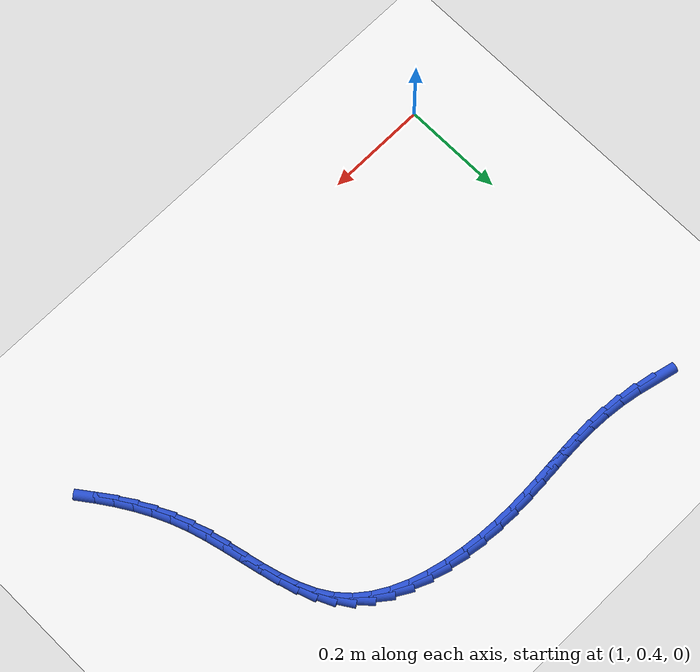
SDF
<sdf version="1.6">
 <world name="default">
  <model name="ground_plane">
   <static>1</static>
   <link name="link">
    <collision name="collision">
     <geometry><plane><normal>0 0 1</normal><size>100 100</size></plane></geometry>
     <surface><friction><ode><mu>100</mu><mu2>50</mu2></ode></friction></surface>
    </collision>
    <visual name="visual">
     <cast_shadows>0</cast_shadows>
     <geometry><plane><normal>0 0 1</normal><size>100 100</size></plane></geometry>
     <material>
      <script><uri>file://media/materials/scripts/gazebo.material</uri><name>Gazebo/WhiteGlow</name></script>
     </material>
    </visual>
   </link>
  </model>
  <model name="line">
   <link name="link_50">
    <pose>1.062405803632912 1.0656660530978226 0.01 0 1.57 -0.23312236808661627</pose>
    <collision name="collision">
     <geometry><cylinder><radius>0.01</radius><length>0.08</length></cylinder></geometry>
    </collision>
    <visual name="visual">
     <material>
      <script><name>Gazebo/Blue</name><uri>file://media/materials/scripts/gazebo.material</uri></script>
     </material>
     <geometry><cylinder><radius>0.01</radius><length>0.08</length></cylinder></geometry>
    </visual>
   </link>
   <link name="link_51">
    <pose>1.1007680325681322 1.0565573512115496 0.01 0 1.57 -0.1752799219053801</pose>
    <collision name="collision">
     <geometry><cylinder><radius>0.01</radius><length>0.08</length></cylinder></geometry>
    </collision>
    <visual name="visual">
     <material>
      <script><name>Gazebo/Blue</name><uri>file://media/materials/scripts/gazebo.material</uri></script>
     </material>
     <geometry><cylinder><radius>0.01</radius><length>0.08</length></cylinder></geometry>
    </visual>
   </link>
   <link name="link_52">
    <pose>1.1380181311865412 1.0499604591706917 0.01 0 1.57 -0.10566344640412224</pose>
    <collision name="collision">
     <geometry><cylinder><radius>0.01</radius><length>0.08</length></cylinder></geometry>
    </collision>
    <visual name="visual">
     <material>
      <script><name>Gazebo/Blue</name><uri>file://media/materials/scripts/gazebo.material</uri></script>
     </material>
     <geometry><cylinder><radius>0.01</radius><length>0.08</length></cylinder></geometry>
    </visual>
   </link>
   <link name="link_53">
    <pose>1.174014799291494 1.0461427084780193 0.01 0 1.57 -0.04329514868922163</pose>
    <collision name="collision">
     <geometry><cylinder><radius>0.01</radius><length>0.08</length></cylinder></geometry>
    </collision>
    <visual name="visual">
     <material>
      <script><name>Gazebo/Blue</name><uri>file://media/materials/scripts/gazebo.material</uri></script>
     </material>
     <geometry><cylinder><radius>0.01</radius><length>0.08</length></cylinder></geometry>
    </visual>
   </link>
   <link name="link_54">
    <pose>1.2090349079151483 1.0446255595995952 0.01 0 1.57 0.007167260759064347</pose>
    <collision name="collision">
     <geometry><cylinder><radius>0.01</radius><length>0.08</length></cylinder></geometry>
    </collision>
    <visual name="visual">
     <material>
      <script><name>Gazebo/Blue</name><uri>file://media/materials/scripts/gazebo.material</uri></script>
     </material>
     <geometry><cylinder><radius>0.01</radius><length>0.08</length></cylinder></geometry>
    </visual>
   </link>
   <link name="link_55">
    <pose>1.2433882325027603 1.0448717830510055 0.01 0 1.57 0.04328253535785284</pose>
    <collision name="collision">
     <geometry><cylinder><radius>0.01</radius><length>0.08</length></cylinder></geometry>
    </collision>
    <visual name="visual">
     <material>
      <script><name>Gazebo/Blue</name><uri>file://media/materials/scripts/gazebo.material</uri></script>
     </material>
     <geometry><cylinder><radius>0.01</radius><length>0.08</length></cylinder></geometry>
    </visual>
   </link>
   <link name="link_56">
    <pose>1.2773845484995852 1.0463441493478358 0.01 0 1.57 0.06357658999469958</pose>
    <collision name="collision">
     <geometry><cylinder><radius>0.01</radius><length>0.08</length></cylinder></geometry>
    </collision>
    <visual name="visual">
     <material>
      <script><name>Gazebo/Blue</name><uri>file://media/materials/scripts/gazebo.material</uri></script>
     </material>
     <geometry><cylinder><radius>0.01</radius><length>0.08</length></cylinder></geometry>
    </visual>
   </link>
   <link name="link_57">
    <pose>1.3113336313508788 1.0485054290056723 0.01 0 1.57 0.06750480699866826</pose>
    <collision name="collision">
     <geometry><cylinder><radius>0.01</radius><length>0.08</length></cylinder></geometry>
    </collision>
    <visual name="visual">
     <material>
      <script><name>Gazebo/Blue</name><uri>file://media/materials/scripts/gazebo.material</uri></script>
     </material>
     <geometry><cylinder><radius>0.01</radius><length>0.08</length></cylinder></geometry>
    </visual>
   </link>
   <link name="link_58">
    <pose>1.3455452565018966 1.0508183925401013 0.01 0 1.57 0.05535453281046241</pose>
    <collision name="collision">
     <geometry><cylinder><radius>0.01</radius><length>0.08</length></cylinder></geometry>
    </collision>
    <visual name="visual">
     <material>
      <script><name>Gazebo/Blue</name><uri>file://media/materials/scripts/gazebo.material</uri></script>
     </material>
     <geometry><cylinder><radius>0.01</radius><length>0.08</length></cylinder></geometry>
    </visual>
   </link>
   <link name="link_59">
    <pose>1.3803291993978948 1.0527458104667082 0.01 0 1.57 0.028160607774629663</pose>
    <collision name="collision">
     <geometry><cylinder><radius>0.01</radius><length>0.08</length></cylinder></geometry>
    </collision>
    <visual name="visual">
     <material>
      <script><name>Gazebo/Blue</name><uri>file://media/materials/scripts/gazebo.material</uri></script>
     </material>
     <geometry><cylinder><radius>0.01</radius><length>0.08</length></cylinder></geometry>
    </visual>
   </link>
   <link name="link_60">
    <pose>1.4159952354841294 1.0537504533010795 0.01 0 1.57 -0.011588158921155601</pose>
    <collision name="collision">
     <geometry><cylinder><radius>0.01</radius><length>0.08</length></cylinder></geometry>
    </collision>
    <visual name="visual">
     <material>
      <script><name>Gazebo/Blue</name><uri>file://media/materials/scripts/gazebo.material</uri></script>
     </material>
     <geometry><cylinder><radius>0.01</radius><length>0.08</length></cylinder></geometry>
    </visual>
   </link>
   <link name="link_61">
    <pose>1.452768156756894 1.0533243037699809 0.01 0 1.57 -0.05762361508047386</pose>
    <collision name="collision">
     <geometry><cylinder><radius>0.01</radius><length>0.08</length></cylinder></geometry>
    </collision>
    <visual name="visual">
     <material>
      <script><name>Gazebo/Blue</name><uri>file://media/materials/scripts/gazebo.material</uri></script>
     </material>
     <geometry><cylinder><radius>0.01</radius><length>0.08</length></cylinder></geometry>
    </visual>
   </link>
   <link name="link_62">
    <pose>1.4902896422493075 1.051159783853118 0.01 0 1.57 -0.1091128675000452</pose>
    <collision name="collision">
     <geometry><cylinder><radius>0.01</radius><length>0.08</length></cylinder></geometry>
    </collision>
    <visual name="visual">
     <material>
      <script><name>Gazebo/Blue</name><uri>file://media/materials/scripts/gazebo.material</uri></script>
     </material>
     <geometry><cylinder><radius>0.01</radius><length>0.08</length></cylinder></geometry>
    </visual>
   </link>
   <link name="link_63">
    <pose>1.5279566323581455 1.0470334419903047 0.01 0 1.57 -0.168020931062326</pose>
    <collision name="collision">
     <geometry><cylinder><radius>0.01</radius><length>0.08</length></cylinder></geometry>
    </collision>
    <visual name="visual">
     <material>
      <script><name>Gazebo/Blue</name><uri>file://media/materials/scripts/gazebo.material</uri></script>
     </material>
     <geometry><cylinder><radius>0.01</radius><length>0.08</length></cylinder></geometry>
    </visual>
   </link>
   <link name="link_64">
    <pose>1.56516522751896 1.0407221153496284 0.01 0 1.57 -0.23670510793564642</pose>
    <collision name="collision">
     <geometry><cylinder><radius>0.01</radius><length>0.08</length></cylinder></geometry>
    </collision>
    <visual name="visual">
     <material>
      <script><name>Gazebo/Blue</name><uri>file://media/materials/scripts/gazebo.material</uri></script>
     </material>
     <geometry><cylinder><radius>0.01</radius><length>0.08</length></cylinder></geometry>
    </visual>
   </link>
   <link name="link_65">
    <pose>1.601311528167304 1.0320026410991774 0.01 0 1.57 -0.3180242158675875</pose>
    <collision name="collision">
     <geometry><cylinder><radius>0.01</radius><length>0.08</length></cylinder></geometry>
    </collision>
    <visual name="visual">
     <material>
      <script><name>Gazebo/Blue</name><uri>file://media/materials/scripts/gazebo.material</uri></script>
     </material>
     <geometry><cylinder><radius>0.01</radius><length>0.08</length></cylinder></geometry>
    </visual>
   </link>
   <link name="link_66">
    <pose>1.6357916347387291 1.0206518564070393 0.01 0 1.57 -0.41536106048401433</pose>
    <collision name="collision">
     <geometry><cylinder><radius>0.01</radius><length>0.08</length></cylinder></geometry>
    </collision>
    <visual name="visual">
     <material>
      <script><name>Gazebo/Blue</name><uri>file://media/materials/scripts/gazebo.material</uri></script>
     </material>
     <geometry><cylinder><radius>0.01</radius><length>0.08</length></cylinder></geometry>
    </visual>
   </link>
   <link name="link_67">
    <pose>1.6680016476687893 1.0064465984413022 0.01 0 1.57 -0.5323926812634643</pose>
    <collision name="collision">
     <geometry><cylinder><radius>0.01</radius><length>0.08</length></cylinder></geometry>
    </collision>
    <visual name="visual">
     <material>
      <script><name>Gazebo/Blue</name><uri>file://media/materials/scripts/gazebo.material</uri></script>
     </material>
     <geometry><cylinder><radius>0.01</radius><length>0.08</length></cylinder></geometry>
    </visual>
   </link>
   <link name="link_68">
    <pose>1.6973376673930352 0.9891637043700539 0.01 0 1.57 -0.6723119249832672</pose>
    <collision name="collision">
     <geometry><cylinder><radius>0.01</radius><length>0.08</length></cylinder></geometry>
    </collision>
    <visual name="visual">
     <material>
      <script><name>Gazebo/Blue</name><uri>file://media/materials/scripts/gazebo.material</uri></script>
     </material>
     <geometry><cylinder><radius>0.01</radius><length>0.08</length></cylinder></geometry>
    </visual>
   </link>
   <link name="link_69">
    <pose>1.7231957943470202 0.9685800113613825 0.01 0 1.57 -0.8360339346330957</pose>
    <collision name="collision">
     <geometry><cylinder><radius>0.01</radius><length>0.08</length></cylinder></geometry>
    </collision>
    <visual name="visual">
     <material>
      <script><name>Gazebo/Blue</name><uri>file://media/materials/scripts/gazebo.material</uri></script>
     </material>
     <geometry><cylinder><radius>0.01</radius><length>0.08</length></cylinder></geometry>
    </visual>
   </link>
   <link name="link_70">
    <pose>1.7449757973966125 0.9444745759520853 0.01 0 1.57 -1.0040285504825182</pose>
    <collision name="collision">
     <geometry><cylinder><radius>0.01</radius><length>0.08</length></cylinder></geometry>
    </collision>
    <visual name="visual">
     <material>
      <script><name>Gazebo/Blue</name><uri>file://media/materials/scripts/gazebo.material</uri></script>
     </material>
     <geometry><cylinder><radius>0.01</radius><length>0.08</length></cylinder></geometry>
    </visual>
   </link>
   <link name="link_71">
    <pose>1.762526095322999 0.9168978840091779 0.01 0 1.57 -1.138918047160862</pose>
    <collision name="collision">
     <geometry><cylinder><radius>0.01</radius><length>0.08</length></cylinder></geometry>
    </collision>
    <visual name="visual">
     <material>
      <script><name>Gazebo/Blue</name><uri>file://media/materials/scripts/gazebo.material</uri></script>
     </material>
     <geometry><cylinder><radius>0.01</radius><length>0.08</length></cylinder></geometry>
    </visual>
   </link>
   <link name="link_72">
    <pose>1.7765690291069722 0.886429136794912 0.01 0 1.57 -1.2366706399649796</pose>
    <collision name="collision">
     <geometry><cylinder><radius>0.01</radius><length>0.08</length></cylinder></geometry>
    </collision>
    <visual name="visual">
     <material>
      <script><name>Gazebo/Blue</name><uri>file://media/materials/scripts/gazebo.material</uri></script>
     </material>
     <geometry><cylinder><radius>0.01</radius><length>0.08</length></cylinder></geometry>
    </visual>
   </link>
   <link name="link_73">
    <pose>1.7879277084468503 0.8537084997767511 0.01 0 1.57 -1.3009106567137878</pose>
    <collision name="collision">
     <geometry><cylinder><radius>0.01</radius><length>0.08</length></cylinder></geometry>
    </collision>
    <visual name="visual">
     <material>
      <script><name>Gazebo/Blue</name><uri>file://media/materials/scripts/gazebo.material</uri></script>
     </material>
     <geometry><cylinder><radius>0.01</radius><length>0.08</length></cylinder></geometry>
    </visual>
   </link>
   <link name="link_74">
    <pose>1.797425243040953 0.8193761384221585 0.01 0 1.57 -1.3356113727087884</pose>
    <collision name="collision">
     <geometry><cylinder><radius>0.01</radius><length>0.08</length></cylinder></geometry>
    </collision>
    <visual name="visual">
     <material>
      <script><name>Gazebo/Blue</name><uri>file://media/materials/scripts/gazebo.material</uri></script>
     </material>
     <geometry><cylinder><radius>0.01</radius><length>0.08</length></cylinder></geometry>
    </visual>
   </link>
   <link name="link_75">
    <pose>1.8058847425875983 0.7840722181985972 0.01 0 1.57 -1.3434369711599339</pose>
    <collision name="collision">
     <geometry><cylinder><radius>0.01</radius><length>0.08</length></cylinder></geometry>
    </collision>
    <visual name="visual">
     <material>
      <script><name>Gazebo/Blue</name><uri>file://media/materials/scripts/gazebo.material</uri></script>
     </material>
     <geometry><cylinder><radius>0.01</radius><length>0.08</length></cylinder></geometry>
    </visual>
   </link>
   <link name="link_76">
    <pose>1.8141293167851058 0.7484369045735306 0.01 0 1.57 -1.325254975710259</pose>
    <collision name="collision">
     <geometry><cylinder><radius>0.01</radius><length>0.08</length></cylinder></geometry>
    </collision>
    <visual name="visual">
     <material>
      <script><name>Gazebo/Blue</name><uri>file://media/materials/scripts/gazebo.material</uri></script>
     </material>
     <geometry><cylinder><radius>0.01</radius><length>0.08</length></cylinder></geometry>
    </visual>
   </link>
   <link name="link_77">
    <pose>1.8229820753317942 0.7131103630144219 0.01 0 1.57 -1.2801198203482085</pose>
    <collision name="collision">
     <geometry><cylinder><radius>0.01</radius><length>0.08</length></cylinder></geometry>
    </collision>
    <visual name="visual">
     <material>
      <script><name>Gazebo/Blue</name><uri>file://media/materials/scripts/gazebo.material</uri></script>
     </material>
     <geometry><cylinder><radius>0.01</radius><length>0.08</length></cylinder></geometry>
    </visual>
   </link>
   <link name="link_78">
    <pose>1.8332661254076776 0.6787327567715427 0.01 0 1.57 -1.2118092849769024</pose>
    <collision name="collision">
     <geometry><cylinder><radius>0.01</radius><length>0.08</length></cylinder></geometry>
    </collision>
    <visual name="visual">
     <material>
      <script><name>Gazebo/Blue</name><uri>file://media/materials/scripts/gazebo.material</uri></script>
     </material>
     <geometry><cylinder><radius>0.01</radius><length>0.08</length></cylinder></geometry>
    </visual>
   </link>
   <link name="link_79">
    <pose>1.8456281841020479 0.6457889499911988 0.01 0 1.57 -1.1424005778273618</pose>
    <collision name="collision">
     <geometry><cylinder><radius>0.01</radius><length>0.08</length></cylinder></geometry>
    </collision>
    <visual name="visual">
     <material>
      <script><name>Gazebo/Blue</name><uri>file://media/materials/scripts/gazebo.material</uri></script>
     </material>
     <geometry><cylinder><radius>0.01</radius><length>0.08</length></cylinder></geometry>
    </visual>
   </link>
   <link name="link_80">
    <pose>1.860060083535181 0.6141872265340683 0.01 0 1.57 -1.0787247031281886</pose>
    <collision name="collision">
     <geometry><cylinder><radius>0.01</radius><length>0.08</length></cylinder></geometry>
    </collision>
    <visual name="visual">
     <material>
      <script><name>Gazebo/Blue</name><uri>file://media/materials/scripts/gazebo.material</uri></script>
     </material>
     <geometry><cylinder><radius>0.01</radius><length>0.08</length></cylinder></geometry>
    </visual>
   </link>
   <link name="link_81">
    <pose>1.8764017056601403 0.5837020887954455 0.01 0 1.57 -1.0220999563051238</pose>
    <collision name="collision">
     <geometry><cylinder><radius>0.01</radius><length>0.08</length></cylinder></geometry>
    </collision>
    <visual name="visual">
     <material>
      <script><name>Gazebo/Blue</name><uri>file://media/materials/scripts/gazebo.material</uri></script>
     </material>
     <geometry><cylinder><radius>0.01</radius><length>0.08</length></cylinder></geometry>
    </visual>
   </link>
   <link name="link_82">
    <pose>1.8944929324299862 0.5541080391706249 0.01 0 1.57 -0.9733984238061587</pose>
    <collision name="collision">
     <geometry><cylinder><radius>0.01</radius><length>0.08</length></cylinder></geometry>
    </collision>
    <visual name="visual">
     <material>
      <script><name>Gazebo/Blue</name><uri>file://media/materials/scripts/gazebo.material</uri></script>
     </material>
     <geometry><cylinder><radius>0.01</radius><length>0.08</length></cylinder></geometry>
    </visual>
   </link>
   <link name="link_83">
    <pose>1.914173645797782 0.5251795800549012 0.01 0 1.57 -0.9330755547395273</pose>
    <collision name="collision">
     <geometry><cylinder><radius>0.01</radius><length>0.08</length></cylinder></geometry>
    </collision>
    <visual name="visual">
     <material>
      <script><name>Gazebo/Blue</name><uri>file://media/materials/scripts/gazebo.material</uri></script>
     </material>
     <geometry><cylinder><radius>0.01</radius><length>0.08</length></cylinder></geometry>
    </visual>
   </link>
  </model>
 </world>
</sdf>
